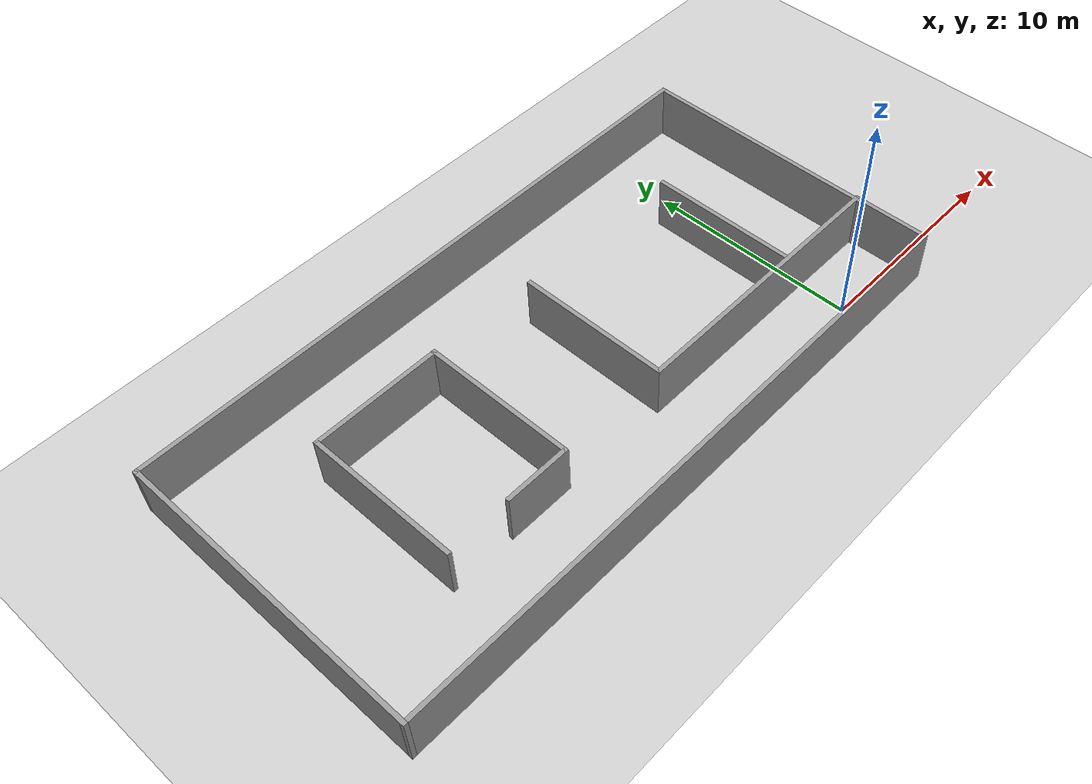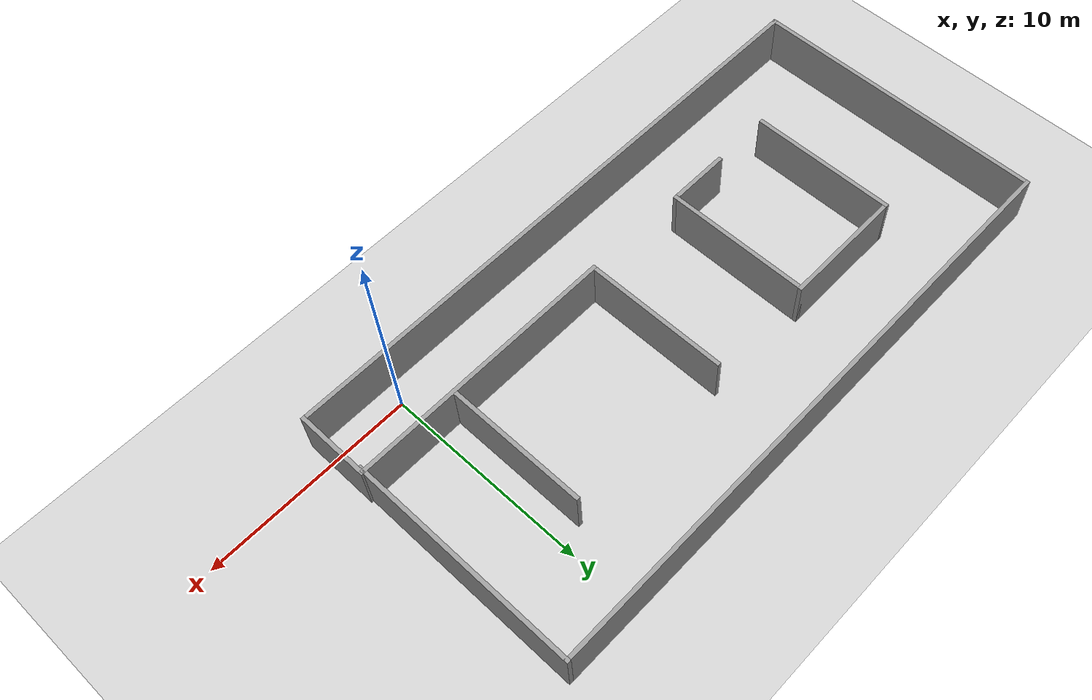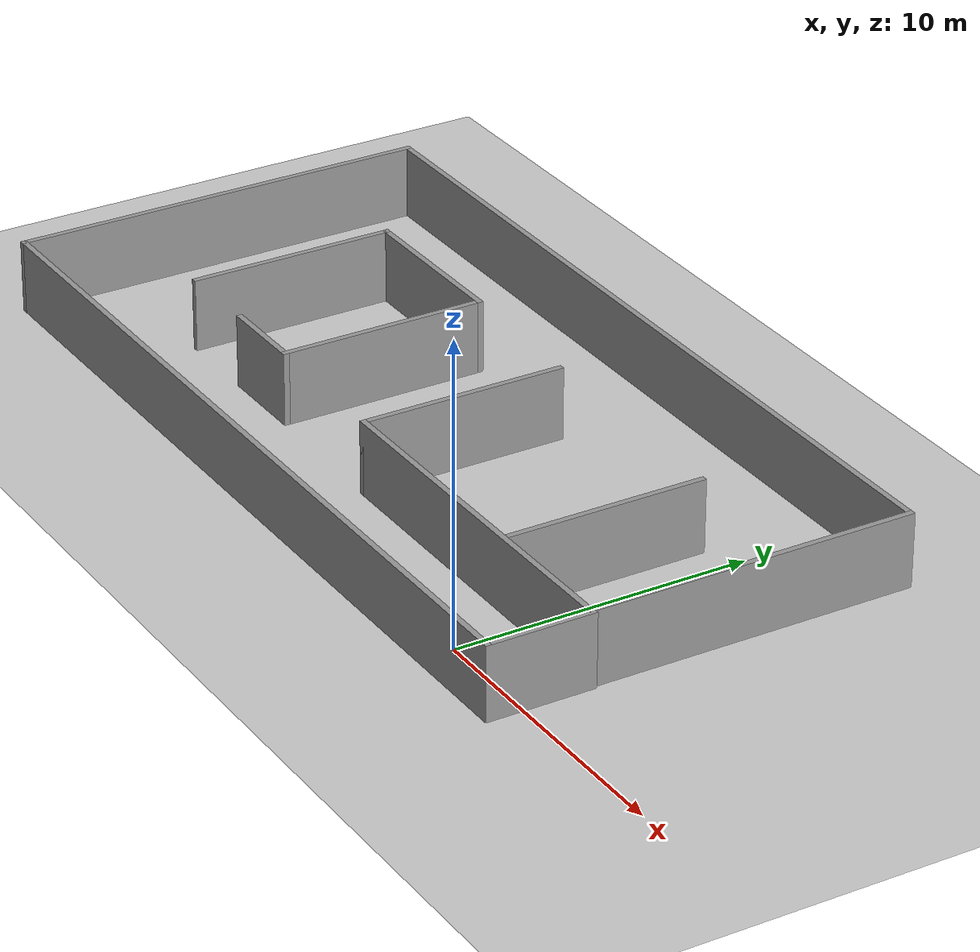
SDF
<sdf version="1.4">
 <world name="default">
  <light name="sun" type="directional">
   <pose>0 0 10 0 -0 0</pose>
   <diffuse>0.8 0.8 0.8 1</diffuse>
   <specular>0.2 0.2 0.2 1</specular>
   <attenuation>
    <range>1000</range>
    <constant>0.9</constant>
    <linear>0.01</linear>
    <quadratic>0.001</quadratic>
   </attenuation>
   <direction>-0.5 0.1 -0.9</direction>
  </light>
  <model name="ground_plane">
   <static>1</static>
   <link name="link">
    <collision name="collision">
     <geometry><plane><normal>0 0 1</normal><size>100 100</size></plane></geometry>
     <surface><friction><ode><mu>100</mu><mu2>50</mu2></ode></friction></surface>
    </collision>
    <visual name="visual">
     <cast_shadows>0</cast_shadows>
     <geometry><plane><normal>0 0 1</normal><size>100 100</size></plane></geometry>
     <material>
      <script><uri>file://media/materials/scripts/gazebo.material</uri><name>Gazebo/Grey</name></script>
     </material>
    </visual>
    <velocity_decay><linear>0</linear><angular>0</angular></velocity_decay>
   </link>
  </model>
  <physics type="ode">
   <max_step_size>0.001</max_step_size>
   <real_time_factor>1</real_time_factor>
   <real_time_update_rate>1000</real_time_update_rate>
   <gravity>0 0 -9.8</gravity>
  </physics>
  <scene><ambient>0.4 0.4 0.4 1</ambient><background>0.7 0.7 0.7 1</background><shadows>1</shadows></scene>
  <spherical_coordinates>
   <surface_model>EARTH_WGS84</surface_model>
   <latitude_deg>0</latitude_deg>
   <longitude_deg>0</longitude_deg>
   <elevation>0</elevation>
   <heading_deg>0</heading_deg>
  </spherical_coordinates>
  <model name="three_room_building_simple">
   <link name="Wall_10">
    <collision name="Wall_10_Collision">
     <geometry><box><size>7.21822 0.2 2.5</size></box></geometry>
     <pose>0 0 1.25 0 -0 0</pose>
    </collision>
    <visual name="Wall_10_Visual">
     <pose>0 0 1.25 0 -0 0</pose>
     <geometry><box><size>7.21822 0.2 2.5</size></box></geometry>
     <material>
      <script><uri>file://media/materials/scripts/gazebo.material</uri><name>Gazebo/Grey</name></script>
     </material>
    </visual>
    <velocity_decay><linear>0</linear><angular>0</angular></velocity_decay>
    <pose>-14.4168 4.92608 0 0 0 -1.5708</pose>
   </link>
   <link name="Wall_11">
    <collision name="Wall_11_Collision">
     <geometry><box><size>3.10086 0.2 2.5</size></box></geometry>
     <pose>0 0 1.25 0 -0 0</pose>
    </collision>
    <visual name="Wall_11_Visual">
     <pose>0 0 1.25 0 -0 0</pose>
     <geometry><box><size>3.10086 0.2 2.5</size></box></geometry>
     <material>
      <script><uri>file://media/materials/scripts/gazebo.material</uri><name>Gazebo/Grey</name></script>
     </material>
    </visual>
    <velocity_decay><linear>0</linear><angular>0</angular></velocity_decay>
    <pose>-15.8672 1.41697 0 0 -0 3.14159</pose>
   </link>
   <link name="Wall_13">
    <collision name="Wall_13_Collision">
     <geometry><box><size>7.12464 0.2 2.5</size></box></geometry>
     <pose>0 0 1.25 0 -0 0</pose>
    </collision>
    <visual name="Wall_13_Visual">
     <pose>0 0 1.25 0 -0 0</pose>
     <geometry><box><size>7.12464 0.2 2.5</size></box></geometry>
     <material>
      <script><uri>file://media/materials/scripts/gazebo.material</uri><name>Gazebo/Grey</name></script>
     </material>
    </visual>
    <velocity_decay><linear>0</linear><angular>0</angular></velocity_decay>
    <pose>-9.27008 4.78572 0 0 0 -1.5708</pose>
   </link>
   <link name="Wall_14">
    <collision name="Wall_14_Collision">
     <geometry><box><size>13.1135 0.2 2.5</size></box></geometry>
     <pose>0 0 1.25 0 -0 0</pose>
    </collision>
    <visual name="Wall_14_Visual">
     <pose>0 0 1.25 0 -0 0</pose>
     <geometry><box><size>13.1135 0.2 2.5</size></box></geometry>
     <material>
      <script><uri>file://media/materials/scripts/gazebo.material</uri><name>Gazebo/Grey</name></script>
     </material>
    </visual>
    <velocity_decay><linear>0</linear><angular>0</angular></velocity_decay>
    <pose>-2.81333 1.3234 0 0 -0 0</pose>
   </link>
   <link name="Wall_16">
    <collision name="Wall_16_Collision">
     <geometry><box><size>6.84391 0.2 2.5</size></box></geometry>
     <pose>0 0 1.25 0 -0 0</pose>
    </collision>
    <visual name="Wall_16_Visual">
     <pose>0 0 1.25 0 -0 0</pose>
     <geometry><box><size>6.84391 0.2 2.5</size></box></geometry>
     <material>
      <script><uri>file://media/materials/scripts/gazebo.material</uri><name>Gazebo/Grey</name></script>
     </material>
    </visual>
    <velocity_decay><linear>0</linear><angular>0</angular></velocity_decay>
    <pose>-1.12895 4.83251 0 0 0 -1.5708</pose>
   </link>
   <link name="Wall_23">
    <collision name="Wall_23_Collision">
     <geometry><box><size>3.66232 0.2 2.5</size></box></geometry>
     <pose>0 0 1.25 0 -0 0</pose>
    </collision>
    <visual name="Wall_23_Visual">
     <pose>0 0 1.25 0 -0 0</pose>
     <geometry><box><size>3.66232 0.2 2.5</size></box></geometry>
     <material>
      <script><uri>file://media/materials/scripts/gazebo.material</uri><name>Gazebo/Grey</name></script>
     </material>
    </visual>
    <velocity_decay><linear>0</linear><angular>0</angular></velocity_decay>
    <pose>3.73701 -0.407763 0 0 0 -1.5708</pose>
   </link>
   <link name="Wall_24">
    <collision name="Wall_24_Collision">
     <geometry><box><size>29.4894 0.2 2.5</size></box></geometry>
     <pose>0 0 1.25 0 -0 0</pose>
    </collision>
    <visual name="Wall_24_Visual">
     <pose>0 0 1.25 0 -0 0</pose>
     <geometry><box><size>29.4894 0.2 2.5</size></box></geometry>
     <material>
      <script><uri>file://media/materials/scripts/gazebo.material</uri><name>Gazebo/Grey</name></script>
     </material>
    </visual>
    <velocity_decay><linear>0</linear><angular>0</angular></velocity_decay>
    <pose>-10.9077 -2.13892 0 0 -0 3.14159</pose>
   </link>
   <link name="Wall_25">
    <collision name="Wall_25_Collision">
     <geometry><box><size>14.6107 0.2 2.5</size></box></geometry>
     <pose>0 0 1.25 0 -0 0</pose>
    </collision>
    <visual name="Wall_25_Visual">
     <pose>0 0 1.25 0 -0 0</pose>
     <geometry><box><size>14.6107 0.2 2.5</size></box></geometry>
     <material>
      <script><uri>file://media/materials/scripts/gazebo.material</uri><name>Gazebo/Grey</name></script>
     </material>
    </visual>
    <velocity_decay><linear>0</linear><angular>0</angular></velocity_decay>
    <pose>-25.5523 5.06644 0 0 -0 1.5708</pose>
   </link>
   <link name="Wall_26">
    <collision name="Wall_26_Collision">
     <geometry><box><size>29.3958 0.2 2.5</size></box></geometry>
     <pose>0 0 1.25 0 -0 0</pose>
    </collision>
    <visual name="Wall_26_Visual">
     <pose>0 0 1.25 0 -0 0</pose>
     <geometry><box><size>29.3958 0.2 2.5</size></box></geometry>
     <material>
      <script><uri>file://media/materials/scripts/gazebo.material</uri><name>Gazebo/Grey</name></script>
     </material>
    </visual>
    <velocity_decay><linear>0</linear><angular>0</angular></velocity_decay>
    <pose>-10.9545 12.2718 0 0 -0 0</pose>
   </link>
   <link name="Wall_27">
    <collision name="Wall_27_Collision">
     <geometry><box><size>11.3356 0.2 2.5</size></box></geometry>
     <pose>0 0 1.25 0 -0 0</pose>
    </collision>
    <visual name="Wall_27_Visual">
     <pose>0 0 1.25 0 -0 0</pose>
     <geometry><box><size>11.3356 0.2 2.5</size></box></geometry>
     <material>
      <script><uri>file://media/materials/scripts/gazebo.material</uri><name>Gazebo/Grey</name></script>
     </material>
    </visual>
    <velocity_decay><linear>0</linear><angular>0</angular></velocity_decay>
    <pose>3.64343 6.70403 0 0 0 -1.5708</pose>
   </link>
   <link name="Wall_8">
    <collision name="Wall_8_Collision">
     <geometry><box><size>7.21822 0.2 2.5</size></box></geometry>
     <pose>0 0 1.25 0 -0 0</pose>
    </collision>
    <visual name="Wall_8_Visual">
     <pose>0 0 1.25 0 -0 0</pose>
     <geometry><box><size>7.21822 0.2 2.5</size></box></geometry>
     <material>
      <script><uri>file://media/materials/scripts/gazebo.material</uri><name>Gazebo/Grey</name></script>
     </material>
    </visual>
    <velocity_decay><linear>0</linear><angular>0</angular></velocity_decay>
    <pose>-20.3121 4.92608 0 0 -0 1.5708</pose>
   </link>
   <link name="Wall_9">
    <collision name="Wall_9_Collision">
     <geometry><box><size>6.0953 0.2 2.5</size></box></geometry>
     <pose>0 0 1.25 0 -0 0</pose>
    </collision>
    <visual name="Wall_9_Visual">
     <pose>0 0 1.25 0 -0 0</pose>
     <geometry><box><size>6.0953 0.2 2.5</size></box></geometry>
     <material>
      <script><uri>file://media/materials/scripts/gazebo.material</uri><name>Gazebo/Grey</name></script>
     </material>
    </visual>
    <velocity_decay><linear>0</linear><angular>0</angular></velocity_decay>
    <pose>-17.3644 8.43519 0 0 -0 0</pose>
   </link>
   <static>1</static>
   <pose>0 1 0 0 -0 0</pose>
  </model>
 </world>
</sdf>
